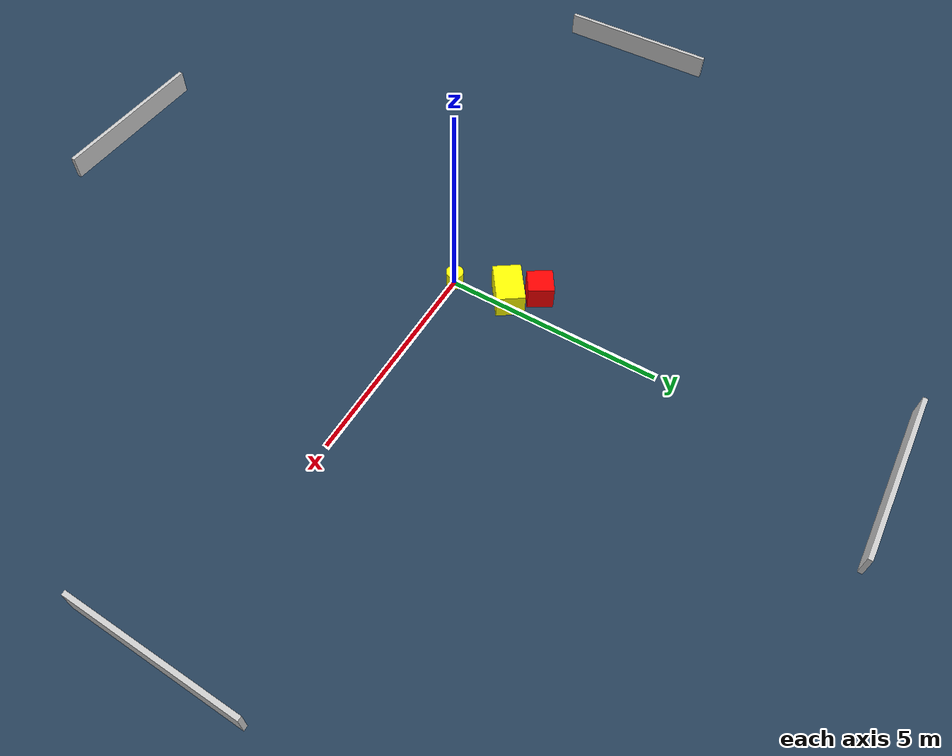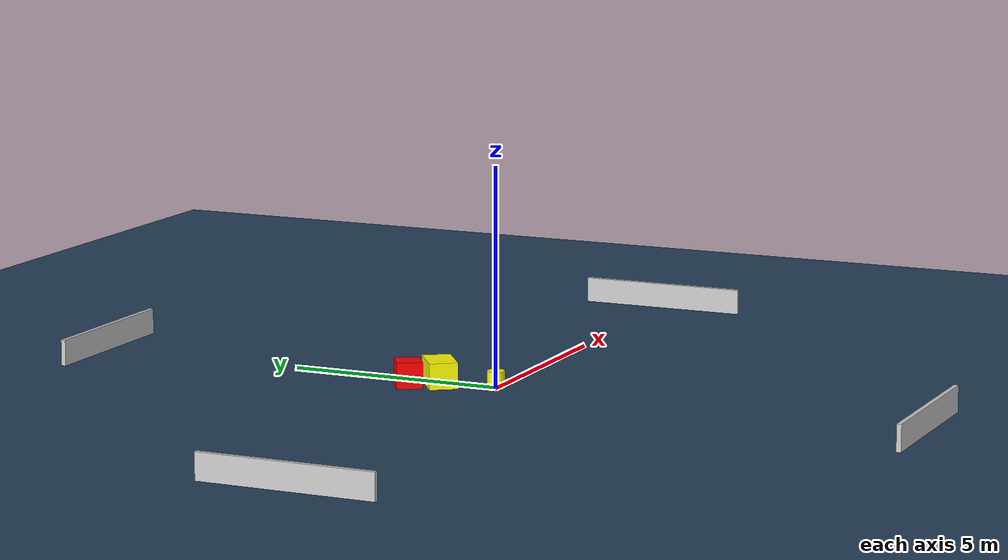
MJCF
<?xml version="1.0" ?>
<mujoco model="generated_environment">
  <option timestep="0.01" integrator="RK4" cone="elliptic"/>
  <default>
    <geom density="1"/>
  </default>
  <asset>
    <texture builtin="gradient" height="3072" name="skybox" rgb1="0.3 0.5 0.7" rgb2="0 0 0" type="skybox" width="512"/>
    <texture builtin="checker" height="300" name="groundplane" rgb1="0.2 0.3 0.4" rgb2="0.1 0.2 0.3" type="2d" width="300"/>
    <material name="groundplane" reflectance="0.2" texrepeat="5 5" texture="groundplane"/>
  </asset>
  <worldbody>
    <light dir="0 0 -1" directional="true" pos="0 0 1.5"/>
    <geom condim="3" friction="0.5 0.005 0.001" material="groundplane" name="floor" pos="0 0 0" size="0 0 0.05" type="plane"/>
    <body name="walls">
      <geom name="wall_1" condim="4" pos="-10.0 0.0 0.3" rgba="0.800000011920929 0.800000011920929 0.800000011920929 1.0" size="0.05 2.0 0.3" type="box"/>
      <geom name="wall_2" condim="4" pos="10.0 0.0 0.3" rgba="0.800000011920929 0.800000011920929 0.800000011920929 1.0" size="0.05 2.0 0.3" type="box"/>
      <geom name="wall_3" condim="4" pos="0.0 -10.0 0.3" rgba="0.800000011920929 0.800000011920929 0.800000011920929 1.0" size="2.0 0.05 0.3" type="box"/>
      <geom name="wall_4" condim="4" pos="0.0 10.0 0.3" rgba="0.800000011920929 0.800000011920929 0.800000011920929 1.0" size="2.0 0.05 0.3" type="box"/>
    </body>
    <body name="robot">
      <joint name="joint_x" type="slide" pos="0 0 0" axis="1 0 0"/>
      <joint name="joint_y" type="slide" pos="0 0 0" axis="0 1 0"/>
      <geom name="robot" type="cylinder" pos="0.0 0.0 0.2" size="0.2 0.2 0.0" mass="5.0" friction="1.0 0.005 0.0001" condim="4" rgba="1.0 1.0 0.0 1.0"/>
    </body>
    <body name="obstacle_1_movable">
      <geom name="obstacle_1_movable" condim="4" pos="-0.2417146427754211 1.2690660069393855 0.3" euler="0 0 305.3630696450743" friction="0.0 0.005 0.001" rgba="1.0 1.0 0.0 1.0" size="0.325912926634058 0.4821574828819205 0.3" type="box" mass="0.1"/>
      <joint type="free"/>
    </body>
    <body name="obstacle_2_static">
      <geom name="obstacle_2_static" condim="4" pos="-0.6372289162527238 1.8617578411712508 0.3" euler="0 0 32.09698688659388" friction="0.0 0.005 0.001" rgba="1.0 0.0 0.0 1.0" size="0.29251063754407325 0.29558525470198055 0.3" type="box"/>
    </body>
  </worldbody>
  <actuator>
    <motor name="actuator_x" joint="joint_x" gear="1" ctrlrange="-1 1"/>
    <motor name="actuator_y" joint="joint_y" gear="1" ctrlrange="-1 1"/>
  </actuator>
</mujoco>
